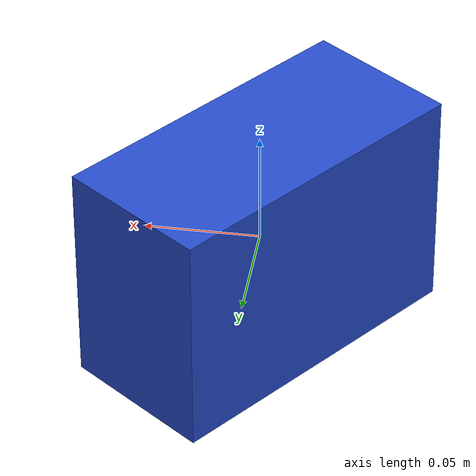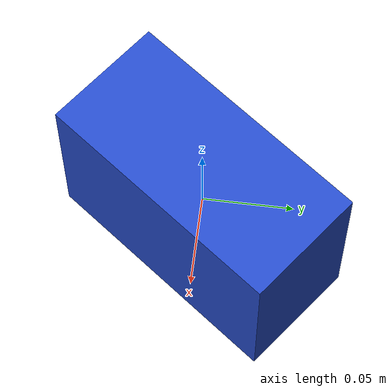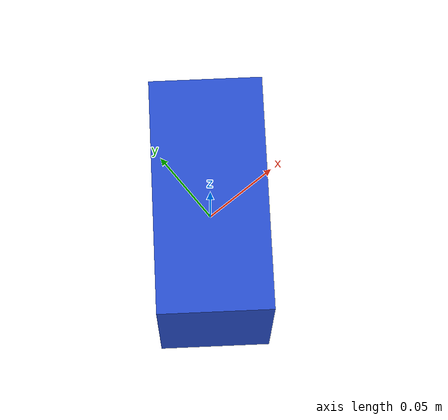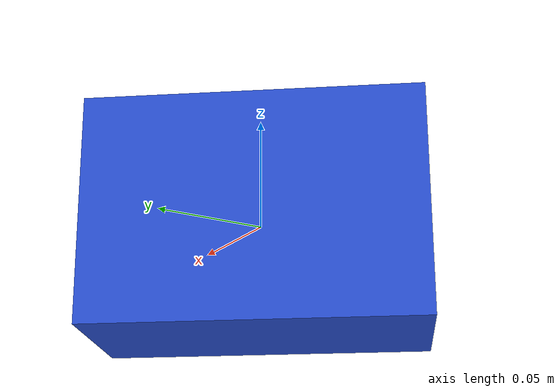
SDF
<sdf version="1.6"><model name="model_2"><static>true</static><link name="link"><pose>0 0 0 0 0 2.5007809931577873</pose><collision name="collision"><geometry><box><size>0.06983068010233931 0.14631212486437656 0.1</size></box></geometry></collision><visual name="visual"><geometry><box><size>0.06983068010233931 0.14631212486437656 0.1</size></box></geometry><material><script><name>Gazebo/Blue</name><uri>file://media/materials/scripts/gazebo.material</uri></script></material></visual></link></model></sdf>
